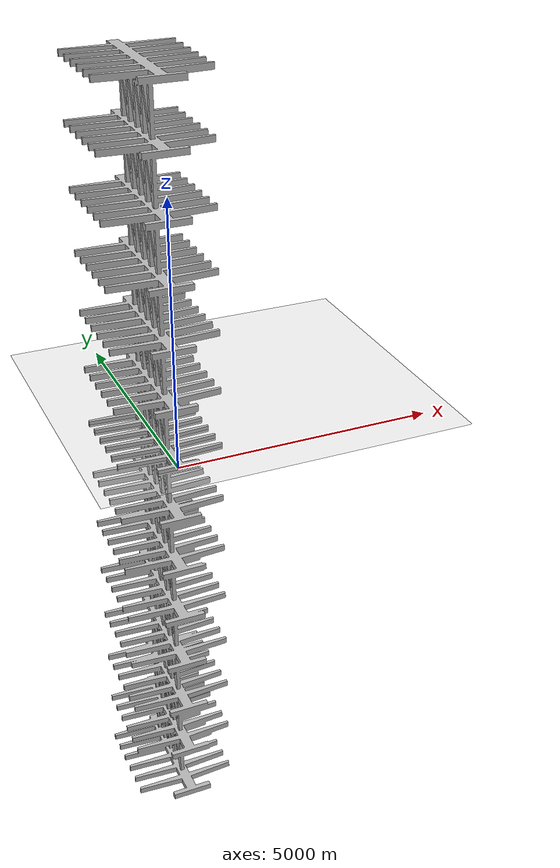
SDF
<?xml version="1.0"?>
<sdf version="1.6" xsi:noNamespaceSchemaLocation="http://sdformat.org/schemas/root.xsd">
  <world name="default">

    <include>
      <uri>model://ground_plane</uri>
    </include>

    <include>
      <uri>model://sun</uri>
    </include>

    <scene>
      <shadows>false</shadows>
    </scene>

    <gui fullscreen='0'>
      <camera name='user_camera'>
        <pose frame=''>0.319654 -0.235002 9.29441 0 1.5138 0.009599</pose>
        <view_controller>orbit</view_controller>
        <projection_type>perspective</projection_type>
      </camera>
    </gui>

    <physics type="ode">
      <real_time_update_rate>1000.0</real_time_update_rate>
      <max_step_size>0.001</max_step_size>
      <real_time_factor>1</real_time_factor>
      <ode>
        <solver>
          <type>quick</type>
          <iters>150</iters>
          <precon_iters>0</precon_iters>
          <sor>1.400000</sor>
          <use_dynamic_moi_rescaling>1</use_dynamic_moi_rescaling>
        </solver>
        <constraints>
          <cfm>0.00001</cfm>
          <erp>0.2</erp>
          <contact_max_correcting_vel>2000.000000</contact_max_correcting_vel>
          <contact_surface_layer>0.01000</contact_surface_layer>
        </constraints>
      </ode>
    </physics>

    <model name="Factory">
      <static>1</static>
      <include>
        <uri>model://factory</uri>
      </include>
    </model>

  </world>
</sdf>

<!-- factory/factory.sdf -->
<sdf version="1.6" xsi:noNamespaceSchemaLocation="http://sdformat.org/schemas/root.xsd">

    <model name="Factory">

        <link name='shelf_1'>

            <pose frame=''> 0 0 0 0 0 0 </pose>

            <self_collide> 0 </self_collide>

            <kinematic> 0 </kinematic>

            <inertial>
                <mass> 50 </mass>
            </inertial>

            <visual name='shelf_1_visual'>
                <geometry>
                    <mesh>
                        <uri> model://factory/meshes/Storage_rack_double_side.stl </uri>
                    </mesh>
                </geometry>
            </visual>

        </link>

    </model>
</sdf>
